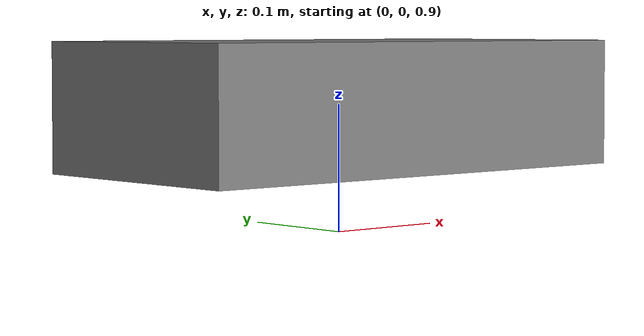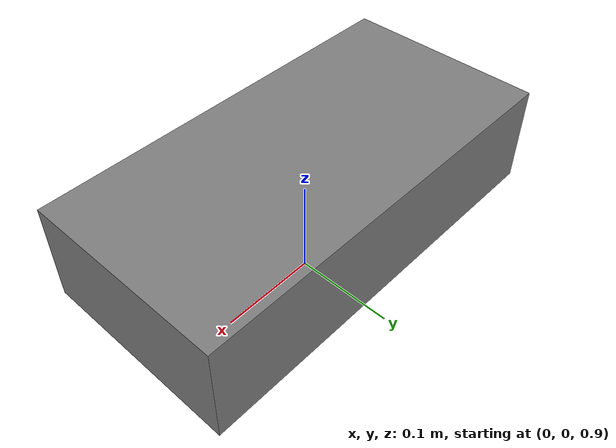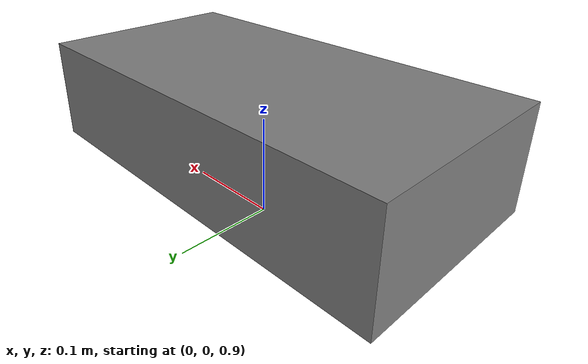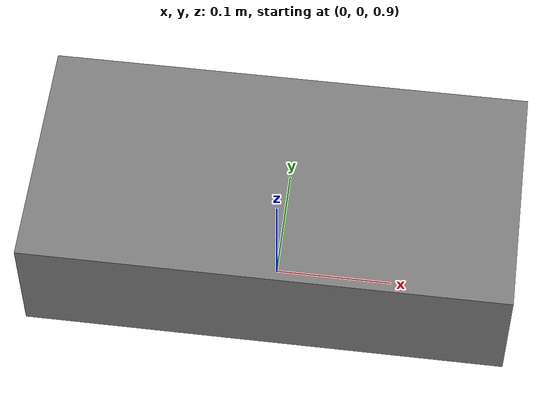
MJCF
<mujoco model="weld_mocap_orient">
            <option gravity="0 0 0" timestep="0.001" integrator="RK4"/>
            <worldbody>
                <body name="target" mocap="true" pos="0 0 1">
                    <geom type="box" size="0.2 0.1 0.05" mass="0.1"/>
                </body>
                <body name="follower" pos="0 0 1">
                    <freejoint name="free"/>
                    <geom type="box" size="0.2 0.1 0.05" mass="1.0"/>
                </body>
            </worldbody>
            <equality>
                <weld body1="follower" body2="target" solref="0.02 1.0"/>
            </equality>
        </mujoco>
